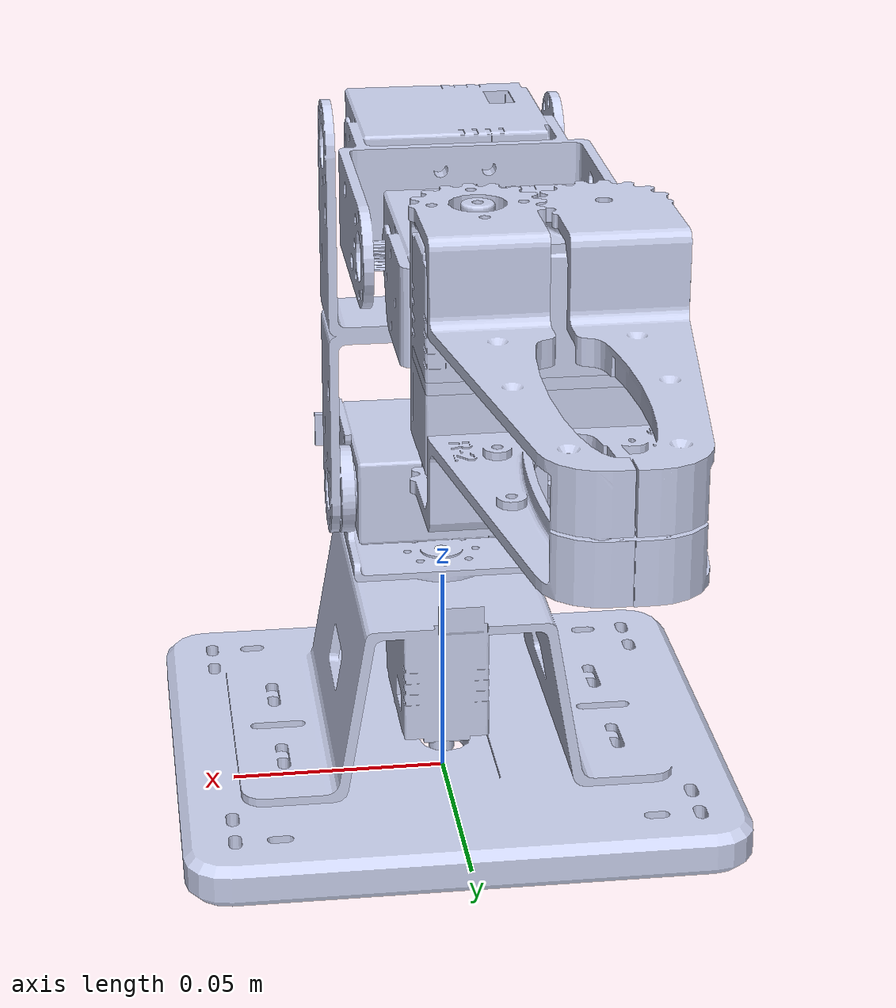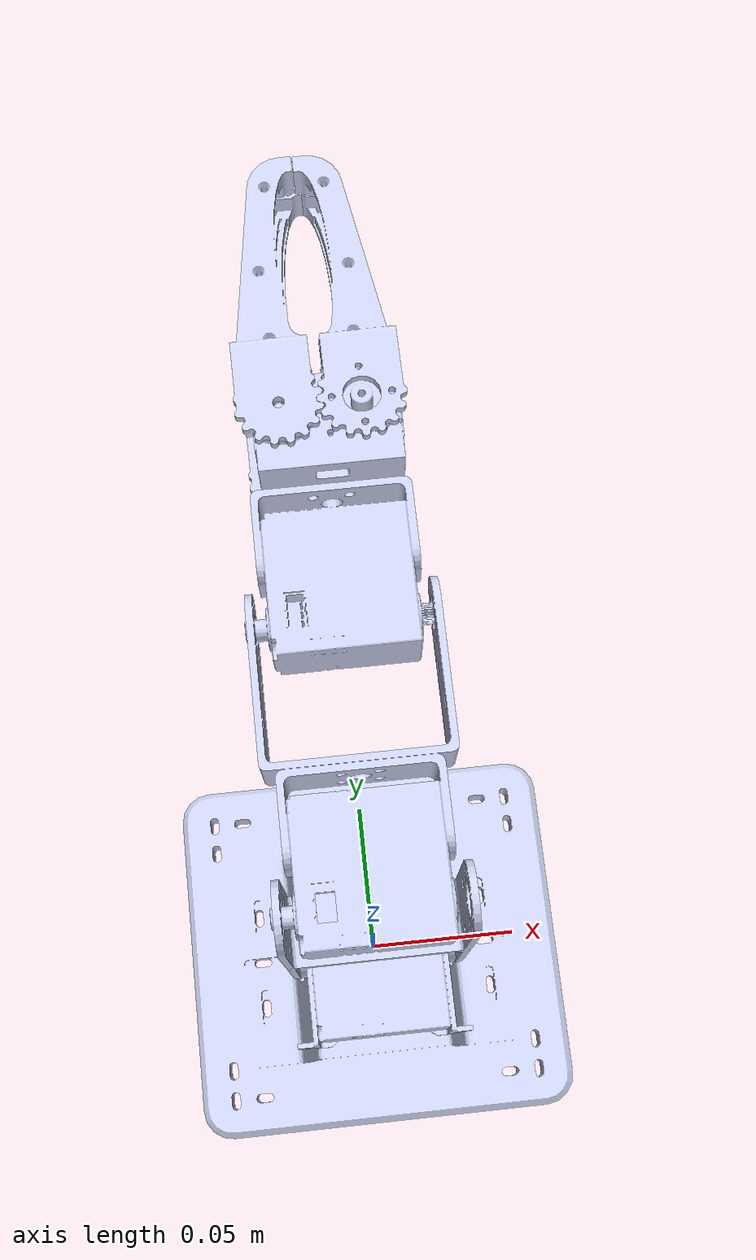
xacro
<?xml version="1.0"?>
<robot xmlns:xacro="http://www.ros.org/wiki/xacro" name="test_arm_1018_new_new">
    <xacro:arg name="initial_positions_file" default="initial_positions.yaml" />

    <!-- Import test_arm_1018_new_new urdf file -->
    <xacro:include filename="$(find test_urdf)/urdf/test_arm_1018_new_new.urdf" />

    <!-- Import control_xacro -->
    <xacro:include filename="test_arm_1018_new_new.ros2_control.xacro" />

    <xacro:test_arm_1018_new_new_ros2_control name="FakeSystem" initial_positions_file="$(arg initial_positions_file)"/>

</robot>

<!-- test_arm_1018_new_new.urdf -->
<robot
  name="test_arm_1018_new_new">
  <link
    name="base_link">
    <inertial>
      <origin
        xyz="6.91778333486933E-09 -0.000987638055765809 0.00969950688294339"
        rpy="0 0 0" />
      <mass
        value="0.170234591037879" />
      <inertia
        ixx="0.000190344867929517"
        ixy="-1.49585044612816E-11"
        ixz="-2.87752205932876E-12"
        iyy="0.000209895117595717"
        iyz="-4.25280510149571E-08"
        izz="0.000385505347421722" />
    </inertial>
    <visual>
      <origin
        xyz="0 0 0"
        rpy="0 0 0" />
      <geometry>
        <mesh
          filename="package://test_urdf/meshes/visual/base_link.STL" />
      </geometry>
      <material
        name="">
        <color
          rgba="0.792156862745098 0.819607843137255 0.933333333333333 1" />
      </material>
    </visual>
    <collision>
      <origin
        xyz="0 0 0"
        rpy="0 0 0" />
      <geometry>
        <mesh
          filename="package://test_urdf/meshes/visual/base_link.STL" />
      </geometry>
    </collision>
  </link>
  <link
    name="link0">
    <inertial>
      <origin
        xyz="-0.000148686471246819 -0.0108477499496043 0.0127257064637936"
        rpy="0 0 0" />
      <mass
        value="0.0134533721751118" />
      <inertia
        ixx="2.84098753200003E-06"
        ixy="-3.43071595594809E-09"
        ixz="5.30738424473841E-11"
        iyy="2.18307388098522E-06"
        iyz="2.00194190669691E-07"
        izz="3.55990656348061E-06" />
    </inertial>
    <visual>
      <origin
        xyz="0 0 0"
        rpy="0 0 0" />
      <geometry>
        <mesh
          filename="package://test_urdf/meshes/visual/link0.STL" />
      </geometry>
      <material
        name="">
        <color
          rgba="0.792156862745098 0.819607843137255 0.933333333333333 1" />
      </material>
    </visual>
    <collision>
      <origin
        xyz="0 0 0"
        rpy="0 0 0" />
      <geometry>
        <mesh
          filename="package://test_urdf/meshes/visual/link0.STL" />
      </geometry>
    </collision>
  </link>
  <joint
    name="joint0"
    type="revolute">
    <origin
      xyz="0 -0.0025385993980081 0.0537499999998391"
      rpy="0 0 0" />
    <parent
      link="base_link" />
    <child
      link="link0" />
    <axis
      xyz="0 0 -1" />
    <limit
      lower="-2"
      upper="2"
      effort="28.0"
      velocity="1.0" />
  </joint>
  <link
    name="link1">
    <inertial>
      <origin
        xyz="-2.6265804479314E-09 -0.0345571058935115 0.0254946423103066"
        rpy="0 0 0" />
      <mass
        value="0.0120579589553567" />
      <inertia
        ixx="7.19129614481569E-06"
        ixy="-6.7798639024877E-09"
        ixz="7.78351757212856E-21"
        iyy="5.27353232807871E-06"
        iyz="-2.09978376024573E-19"
        izz="2.71342255945596E-06" />
    </inertial>
    <visual>
      <origin
        xyz="0 0 0"
        rpy="0 0 0" />
      <geometry>
        <mesh
          filename="package://test_urdf/meshes/visual/link1.STL" />
      </geometry>
      <material
        name="">
        <color
          rgba="0.792156862745098 0.819607843137255 0.933333333333333 1" />
      </material>
    </visual>
    <collision>
      <origin
        xyz="0 0 0"
        rpy="0 0 0" />
      <geometry>
        <mesh
          filename="package://test_urdf/meshes/visual/link1.STL" />
      </geometry>
    </collision>
  </link>
  <joint
    name="joint1"
    type="revolute">
    <origin
      xyz="0.0257499999999922 -0.000816386290255001 0.0178942036737967"
      rpy="-1.57079632679482 0 1.5707963267949" />
    <parent
      link="link0" />
    <child
      link="link1" />
    <axis
      xyz="0 0 1" />
    <limit
      lower="-0.9"
      upper="1.5"
      effort="28.0"
      velocity="1.0" />
  </joint>
  <link
    name="link2">
    <inertial>
      <origin
        xyz="0.0265477568891185 5.89201840095477E-10 0.0209223131306843"
        rpy="0 0 0" />
      <mass
        value="0.0163235420272894" />
      <inertia
        ixx="4.24056894578293E-06"
        ixy="3.38988499063712E-09"
        ixz="-3.36881501952233E-09"
        iyy="6.33118981534796E-06"
        iyz="-4.63361239728688E-15"
        izz="3.44644530707849E-06" />
    </inertial>
    <visual>
      <origin
        xyz="0 0 0"
        rpy="0 0 0" />
      <geometry>
        <mesh
          filename="package://test_urdf/meshes/visual/link2.STL" />
      </geometry>
      <material
        name="">
        <color
          rgba="0.792156862745098 0.819607843137255 0.933333333333333 1" />
      </material>
    </visual>
    <collision>
      <origin
        xyz="0 0 0"
        rpy="0 0 0" />
      <geometry>
        <mesh
          filename="package://test_urdf/meshes/visual/link2.STL" />
      </geometry>
    </collision>
  </link>
  <joint
    name="joint2"
    type="revolute">
    <origin
      xyz="0 -0.0813988613306236 0.00495000000000783"
      rpy="0 0 0" />
    <parent
      link="link1" />
    <child
      link="link2" />
    <axis
      xyz="0 0 1" />
    <limit
      lower="-3.14"
      upper="0.9"
      effort="28.0"
      velocity="1.0" />
  </joint>
  <link
    name="link3">
    <inertial>
      <origin
        xyz="0.032358527357652 -0.000344933955438539 0.021144198437459"
        rpy="0 0 0" />
      <mass
        value="0.0247731137376588" />
      <inertia
        ixx="5.86552337433994E-06"
        ixy="-1.41339391042707E-12"
        ixz="-2.37103119931184E-07"
        iyy="5.60220869392492E-06"
        iyz="3.31921416472115E-09"
        izz="5.07109089498203E-06" />
    </inertial>
    <visual>
      <origin
        xyz="0 0 0"
        rpy="0 0 0" />
      <geometry>
        <mesh
          filename="package://test_urdf/meshes/visual/link3.STL" />
      </geometry>
      <material
        name="">
        <color
          rgba="0.792156862745098 0.819607843137255 0.933333333333333 1" />
      </material>
    </visual>
    <collision>
      <origin
        xyz="0 0 0"
        rpy="0 0 0" />
      <geometry>
        <mesh
          filename="package://test_urdf/meshes/visual/link3.STL" />
      </geometry>
    </collision>
  </link>
  <joint
    name="joint3"
    type="revolute">
    <origin
      xyz="0.077374 0 0"
      rpy="0 0 0" />
    <parent
      link="link2" />
    <child
      link="link3" />
    <axis
      xyz="0 0 1" />
    <limit
      lower="-2.0"
      upper="1.5"
      effort="28.0"
      velocity="1.0" />
  </joint>
  <link
    name="link4_end">
    <inertial>
      <origin
        xyz="0.01 -1.38777878078145E-17 4.33680868994202E-18"
        rpy="0 0 0" />
      <mass
        value="0.00183903257492059" />
      <inertia
        ixx="2.45763080412711E-07"
        ixy="7.18063503004624E-23"
        ixz="-2.03678301692597E-22"
        iyy="3.06191949344577E-07"
        iyz="-6.56446735445044E-24"
        izz="6.20502826520876E-08" />
    </inertial>
    <visual>
      <origin
        xyz="0 0 0"
        rpy="0 0 0" />
      <geometry>
        <mesh
          filename="package://test_urdf/meshes/visual/link4_end.STL" />
      </geometry>
      <material
        name="">
        <color
          rgba="0.792156862745098 0.819607843137255 0.933333333333333 1" />
      </material>
    </visual>
    <collision>
      <origin
        xyz="0 0 0"
        rpy="0 0 0" />
      <geometry>
        <mesh
          filename="package://test_urdf/meshes/visual/link4_end.STL" />
      </geometry>
    </collision>
  </link>
  <joint
    name="jointe_end"
    type="fixed">
    <origin
      xyz="0.063675 0.00335 0.019975"
      rpy="0 0 -3.1416" />
    <parent
      link="link3" />
    <child
      link="link4_end" />
    <axis
      xyz="0 0 0" />
  </joint>
  <link
    name="link4_0">
    <inertial>
      <origin
        xyz="0.0330511280658097 0.00027277436630512 -0.0266302052102281"
        rpy="0 0 0" />
      <mass
        value="0.0086970283014079" />
      <inertia
        ixx="7.84856466527093E-07"
        ixy="-3.87408492985789E-07"
        ixz="3.33950203699111E-08"
        iyy="7.03452850502723E-06"
        iyz="4.11048560512622E-09"
        izz="6.77200341516074E-06" />
    </inertial>
    <visual>
      <origin
        xyz="0 0 0"
        rpy="0 0 0" />
      <geometry>
        <mesh
          filename="package://test_urdf/meshes/visual/link4_0.STL" />
      </geometry>
      <material
        name="">
        <color
          rgba="0.792156862745098 0.819607843137255 0.933333333333333 1" />
      </material>
    </visual>
    <collision>
      <origin
        xyz="0 0 0"
        rpy="0 0 0" />
      <geometry>
        <mesh
          filename="package://test_urdf/meshes/visual/link4_0.STL" />
      </geometry>
    </collision>
  </link>
  <joint
    name="joint4_0"
    type="revolute">
    <origin
      xyz="0.01 0.02995 -0.009675"
      rpy="1.5708 -0.01083 3.1416" />
    <parent
      link="link4_end" />
    <child
      link="link4_0" />
    <axis
      xyz="0 0 -1" />
    <limit
      lower="0.0"
      upper="2.0"
      effort="28.0"
      velocity="1.0" />
  </joint>
  <link
    name="link4_1">
    <inertial>
      <origin
        xyz="0.031501735492723 -0.000501563206578237 -0.0314925232676157"
        rpy="0 0 0" />
      <mass
        value="0.0137369834582284" />
      <inertia
        ixx="1.23822723867816E-06"
        ixy="6.75819876123419E-07"
        ixz="-7.55665133610327E-07"
        iyy="1.12944276667532E-05"
        iyz="5.43864342855236E-08"
        izz="1.08894179820153E-05" />
    </inertial>
    <visual>
      <origin
        xyz="0 0 0"
        rpy="0 0 0" />
      <geometry>
        <mesh
          filename="package://test_urdf/meshes/visual/link4_1.STL" />
      </geometry>
      <material
        name="">
        <color
          rgba="0.792156862745098 0.819607843137255 0.933333333333333 1" />
      </material>
    </visual>
    <collision>
      <origin
        xyz="0 0 0"
        rpy="0 0 0" />
      <geometry>
        <mesh
          filename="package://test_urdf/meshes/visual/link4_1.STL" />
      </geometry>
    </collision>
  </link>
  <joint
    name="joint4_1"
    type="revolute">
    <origin
      xyz="0.01 0.02965 0.012325"
      rpy="1.5708 -0.010399 -3.1416" />
    <parent
      link="link4_end" />
    <child
      link="link4_1" />
    <axis
      xyz="0 0 -1" />
    <limit
      lower="-2.0"
      upper="0.0"
      effort="28.0"
      velocity="1.0" />
  </joint>
</robot>
